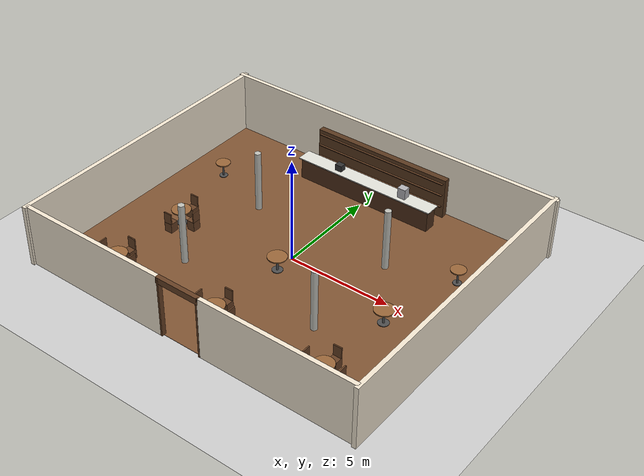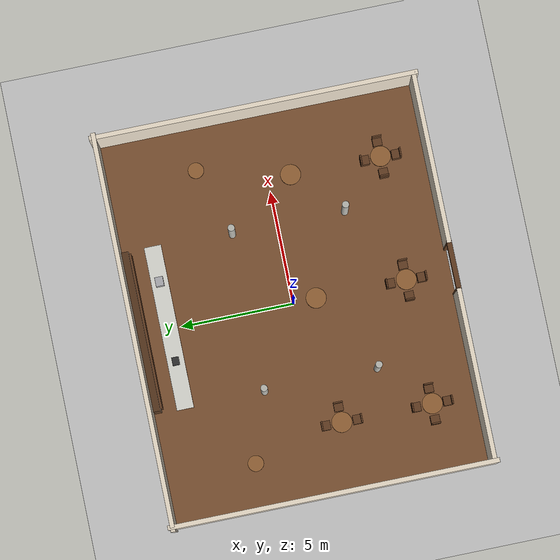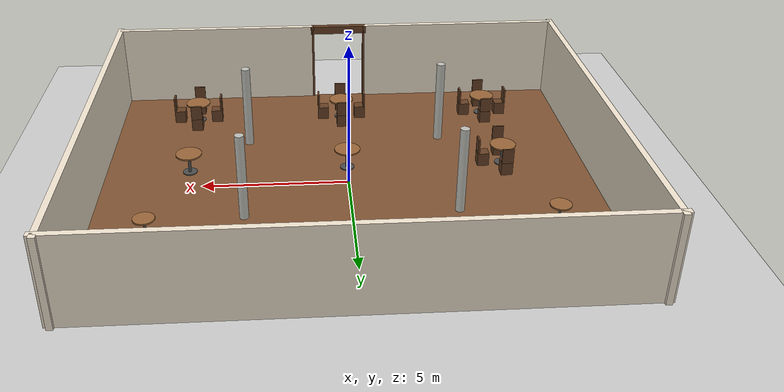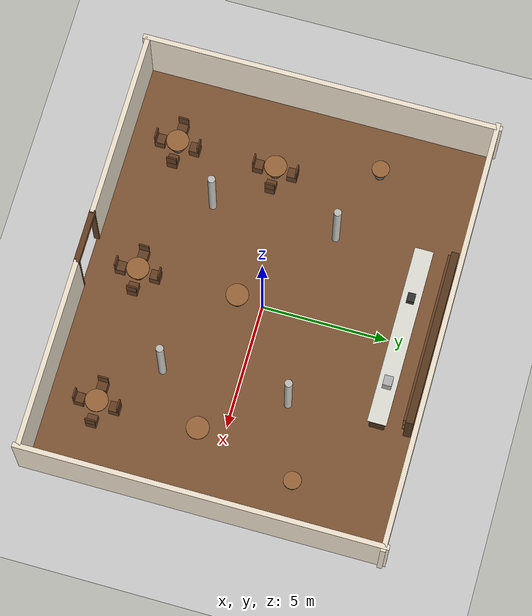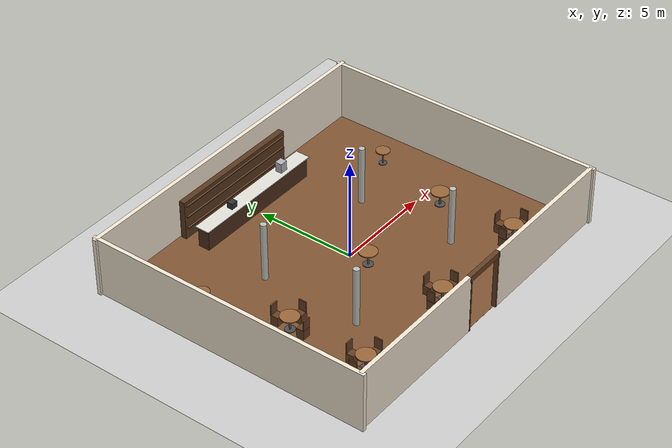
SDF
<sdf version="1.6">
 <world name="cafe_world">
  <include><uri>model://sun</uri></include>
  <include><uri>model://ground_plane</uri></include>
  <model name="cafe_floor">
   <static>true</static>
   <link name="link">
    <pose>0 0 0.005 0 0 0</pose>
    <collision name="c"><geometry><box><size>17 14 0.01</size></box></geometry></collision>
    <visual name="v">
     <geometry><box><size>17 14 0.01</size></box></geometry>
     <material><ambient>0.45 0.3 0.18 1</ambient><diffuse>0.5 0.33 0.2 1</diffuse></material>
    </visual>
   </link>
  </model>
  <model name="wall_north">
   <static>true</static>
   <link name="link">
    <pose>0 7 1.5 0 0 0</pose>
    <collision name="c"><geometry><box><size>17.4 0.2 3</size></box></geometry></collision>
    <visual name="v">
     <geometry><box><size>17.4 0.2 3</size></box></geometry>
     <material><ambient>0.92 0.87 0.78 1</ambient><diffuse>0.95 0.9 0.82 1</diffuse></material>
    </visual>
   </link>
  </model>
  <model name="wall_south_left">
   <static>true</static>
   <link name="link">
    <pose>-4.75 -7 1.5 0 0 0</pose>
    <collision name="c"><geometry><box><size>7.5 0.2 3</size></box></geometry></collision>
    <visual name="v">
     <geometry><box><size>7.5 0.2 3</size></box></geometry>
     <material><ambient>0.92 0.87 0.78 1</ambient><diffuse>0.95 0.9 0.82 1</diffuse></material>
    </visual>
   </link>
  </model>
  <model name="wall_south_right">
   <static>true</static>
   <link name="link">
    <pose>4.75 -7 1.5 0 0 0</pose>
    <collision name="c"><geometry><box><size>7.5 0.2 3</size></box></geometry></collision>
    <visual name="v">
     <geometry><box><size>7.5 0.2 3</size></box></geometry>
     <material><ambient>0.92 0.87 0.78 1</ambient><diffuse>0.95 0.9 0.82 1</diffuse></material>
    </visual>
   </link>
  </model>
  <model name="wall_east">
   <static>true</static>
   <link name="link">
    <pose>8.5 0 1.5 0 0 0</pose>
    <collision name="c"><geometry><box><size>0.2 14.4 3</size></box></geometry></collision>
    <visual name="v">
     <geometry><box><size>0.2 14.4 3</size></box></geometry>
     <material><ambient>0.92 0.87 0.78 1</ambient><diffuse>0.95 0.9 0.82 1</diffuse></material>
    </visual>
   </link>
  </model>
  <model name="wall_west">
   <static>true</static>
   <link name="link">
    <pose>-8.5 0 1.5 0 0 0</pose>
    <collision name="c"><geometry><box><size>0.2 14.4 3</size></box></geometry></collision>
    <visual name="v">
     <geometry><box><size>0.2 14.4 3</size></box></geometry>
     <material><ambient>0.92 0.87 0.78 1</ambient><diffuse>0.95 0.9 0.82 1</diffuse></material>
    </visual>
   </link>
  </model>
  <model name="door_frame_left">
   <static>true</static>
   <link name="link">
    <pose>-1 -7 1.5 0 0 0</pose>
    <collision name="c"><geometry><box><size>0.08 0.22 3</size></box></geometry></collision>
    <visual name="v">
     <geometry><box><size>0.08 0.22 3</size></box></geometry>
     <material><ambient>0.35 0.22 0.12 1</ambient><diffuse>0.4 0.25 0.14 1</diffuse></material>
    </visual>
   </link>
  </model>
  <model name="door_frame_right">
   <static>true</static>
   <link name="link">
    <pose>1 -7 1.5 0 0 0</pose>
    <collision name="c"><geometry><box><size>0.08 0.22 3</size></box></geometry></collision>
    <visual name="v">
     <geometry><box><size>0.08 0.22 3</size></box></geometry>
     <material><ambient>0.35 0.22 0.12 1</ambient><diffuse>0.4 0.25 0.14 1</diffuse></material>
    </visual>
   </link>
  </model>
  <model name="door_lintel">
   <static>true</static>
   <link name="link">
    <pose>0 -7 2.85 0 0 0</pose>
    <collision name="c"><geometry><box><size>2.16 0.22 0.3</size></box></geometry></collision>
    <visual name="v">
     <geometry><box><size>2.16 0.22 0.3</size></box></geometry>
     <material><ambient>0.35 0.22 0.12 1</ambient><diffuse>0.4 0.25 0.14 1</diffuse></material>
    </visual>
   </link>
  </model>
  <model name="counter">
   <static>true</static>
   <link name="link">
    <pose>0 5.5 0 0 0 0</pose>
    <collision name="body">
     <pose>0 0 0.525 0 0 0</pose>
     <geometry><box><size>7.0 0.6 1.05</size></box></geometry>
    </collision>
    <visual name="body_v">
     <pose>0 0 0.525 0 0 0</pose>
     <geometry><box><size>7.0 0.6 1.05</size></box></geometry>
     <material><ambient>0.25 0.15 0.08 1</ambient><diffuse>0.3 0.18 0.1 1</diffuse></material>
    </visual>
    <collision name="top">
     <pose>0 0 1.075 0 0 0</pose>
     <geometry><box><size>7.2 0.75 0.05</size></box></geometry>
    </collision>
    <visual name="top_v">
     <pose>0 0 1.075 0 0 0</pose>
     <geometry><box><size>7.2 0.75 0.05</size></box></geometry>
     <material><ambient>0.82 0.82 0.8 1</ambient><diffuse>0.88 0.88 0.85 1</diffuse></material>
    </visual>
   </link>
  </model>
  <model name="back_shelf">
   <static>true</static>
   <link name="link">
    <pose>0 6.7 0 0 0 0</pose>
    <collision name="c">
     <pose>0 0 1.0 0 0 0</pose>
     <geometry><box><size>7.0 0.3 2.0</size></box></geometry>
    </collision>
    <visual name="v">
     <pose>0 0 1.0 0 0 0</pose>
     <geometry><box><size>7.0 0.3 2.0</size></box></geometry>
     <material><ambient>0.3 0.18 0.1 1</ambient><diffuse>0.35 0.22 0.12 1</diffuse></material>
    </visual>
    <collision name="shelf1">
     <pose>0 -0.05 0.6 0 0 0</pose>
     <geometry><box><size>6.8 0.4 0.03</size></box></geometry>
    </collision>
    <visual name="shelf1_v">
     <pose>0 -0.05 0.6 0 0 0</pose>
     <geometry><box><size>6.8 0.4 0.03</size></box></geometry>
     <material><ambient>0.4 0.25 0.14 1</ambient></material>
    </visual>
    <collision name="shelf2">
     <pose>0 -0.05 1.2 0 0 0</pose>
     <geometry><box><size>6.8 0.4 0.03</size></box></geometry>
    </collision>
    <visual name="shelf2_v">
     <pose>0 -0.05 1.2 0 0 0</pose>
     <geometry><box><size>6.8 0.4 0.03</size></box></geometry>
     <material><ambient>0.4 0.25 0.14 1</ambient></material>
    </visual>
    <collision name="shelf3">
     <pose>0 -0.05 1.8 0 0 0</pose>
     <geometry><box><size>6.8 0.4 0.03</size></box></geometry>
    </collision>
    <visual name="shelf3_v">
     <pose>0 -0.05 1.8 0 0 0</pose>
     <geometry><box><size>6.8 0.4 0.03</size></box></geometry>
     <material><ambient>0.4 0.25 0.14 1</ambient></material>
    </visual>
   </link>
  </model>
  <model name="espresso_machine">
   <static>true</static>
   <link name="link">
    <pose>2 5.5 1.35 0 0 0</pose>
    <collision name="c"><geometry><box><size>0.4 0.35 0.5</size></box></geometry></collision>
    <visual name="v">
     <geometry><box><size>0.4 0.35 0.5</size></box></geometry>
     <material><ambient>0.6 0.6 0.62 1</ambient><diffuse>0.7 0.7 0.72 1</diffuse></material>
    </visual>
   </link>
  </model>
  <model name="cash_register">
   <static>true</static>
   <link name="link">
    <pose>-1.5 5.5 1.25 0 0 0</pose>
    <collision name="c"><geometry><box><size>0.35 0.3 0.3</size></box></geometry></collision>
    <visual name="v">
     <geometry><box><size>0.35 0.3 0.3</size></box></geometry>
     <material><ambient>0.15 0.15 0.15 1</ambient><diffuse>0.2 0.2 0.2 1</diffuse></material>
    </visual>
   </link>
  </model>
  <model name="column_0">
   <static>true</static>
   <link name="link">
    <pose>-3.5 -3 1.5 0 0 0</pose>
    <collision name="c">
     <geometry><cylinder><radius>0.15</radius><length>3</length></cylinder></geometry>
    </collision>
    <visual name="v">
     <geometry><cylinder><radius>0.15</radius><length>3</length></cylinder></geometry>
     <material><ambient>0.7 0.7 0.68 1</ambient><diffuse>0.75 0.75 0.72 1</diffuse></material>
    </visual>
   </link>
  </model>
  <model name="column_1">
   <static>true</static>
   <link name="link">
    <pose>3.5 -3 1.5 0 0 0</pose>
    <collision name="c">
     <geometry><cylinder><radius>0.15</radius><length>3</length></cylinder></geometry>
    </collision>
    <visual name="v">
     <geometry><cylinder><radius>0.15</radius><length>3</length></cylinder></geometry>
     <material><ambient>0.7 0.7 0.68 1</ambient><diffuse>0.75 0.75 0.72 1</diffuse></material>
    </visual>
   </link>
  </model>
  <model name="column_2">
   <static>true</static>
   <link name="link">
    <pose>-3.5 2 1.5 0 0 0</pose>
    <collision name="c">
     <geometry><cylinder><radius>0.15</radius><length>3</length></cylinder></geometry>
    </collision>
    <visual name="v">
     <geometry><cylinder><radius>0.15</radius><length>3</length></cylinder></geometry>
     <material><ambient>0.7 0.7 0.68 1</ambient><diffuse>0.75 0.75 0.72 1</diffuse></material>
    </visual>
   </link>
  </model>
  <model name="column_3">
   <static>true</static>
   <link name="link">
    <pose>3.5 2 1.5 0 0 0</pose>
    <collision name="c">
     <geometry><cylinder><radius>0.15</radius><length>3</length></cylinder></geometry>
    </collision>
    <visual name="v">
     <geometry><cylinder><radius>0.15</radius><length>3</length></cylinder></geometry>
     <material><ambient>0.7 0.7 0.68 1</ambient><diffuse>0.75 0.75 0.72 1</diffuse></material>
    </visual>
   </link>
  </model>
  <model name="table_0">
   <static>true</static>
   <link name="link">
    <pose>-5.5 -5.0 0 0 0 0</pose>
    <collision name="top">
     <pose>0 0 0.73 0 0 0</pose>
     <geometry><cylinder><radius>0.45</radius><length>0.05</length></cylinder></geometry>
    </collision>
    <visual name="top_v">
     <pose>0 0 0.73 0 0 0</pose>
     <geometry><cylinder><radius>0.45</radius><length>0.05</length></cylinder></geometry>
     <material><ambient>0.55 0.36 0.2 1</ambient><diffuse>0.6 0.4 0.22 1</diffuse></material>
    </visual>
    <collision name="leg">
     <pose>0 0 0.35 0 0 0</pose>
     <geometry><cylinder><radius>0.05</radius><length>0.7</length></cylinder></geometry>
    </collision>
    <visual name="leg_v">
     <pose>0 0 0.35 0 0 0</pose>
     <geometry><cylinder><radius>0.05</radius><length>0.7</length></cylinder></geometry>
     <material><ambient>0.3 0.3 0.3 1</ambient></material>
    </visual>
    <collision name="base">
     <pose>0 0 0.02 0 0 0</pose>
     <geometry><cylinder><radius>0.25</radius><length>0.04</length></cylinder></geometry>
    </collision>
    <visual name="base_v">
     <pose>0 0 0.02 0 0 0</pose>
     <geometry><cylinder><radius>0.25</radius><length>0.04</length></cylinder></geometry>
     <material><ambient>0.3 0.3 0.3 1</ambient></material>
    </visual>
   </link>
  </model>
  <model name="table_1">
   <static>true</static>
   <link name="link">
    <pose>0 -5.0 0 0 0 0</pose>
    <collision name="top">
     <pose>0 0 0.73 0 0 0</pose>
     <geometry><cylinder><radius>0.45</radius><length>0.05</length></cylinder></geometry>
    </collision>
    <visual name="top_v">
     <pose>0 0 0.73 0 0 0</pose>
     <geometry><cylinder><radius>0.45</radius><length>0.05</length></cylinder></geometry>
     <material><ambient>0.55 0.36 0.2 1</ambient><diffuse>0.6 0.4 0.22 1</diffuse></material>
    </visual>
    <collision name="leg">
     <pose>0 0 0.35 0 0 0</pose>
     <geometry><cylinder><radius>0.05</radius><length>0.7</length></cylinder></geometry>
    </collision>
    <visual name="leg_v">
     <pose>0 0 0.35 0 0 0</pose>
     <geometry><cylinder><radius>0.05</radius><length>0.7</length></cylinder></geometry>
     <material><ambient>0.3 0.3 0.3 1</ambient></material>
    </visual>
    <collision name="base">
     <pose>0 0 0.02 0 0 0</pose>
     <geometry><cylinder><radius>0.25</radius><length>0.04</length></cylinder></geometry>
    </collision>
    <visual name="base_v">
     <pose>0 0 0.02 0 0 0</pose>
     <geometry><cylinder><radius>0.25</radius><length>0.04</length></cylinder></geometry>
     <material><ambient>0.3 0.3 0.3 1</ambient></material>
    </visual>
   </link>
  </model>
  <model name="table_2">
   <static>true</static>
   <link name="link">
    <pose>5.5 -5.0 0 0 0 0</pose>
    <collision name="top">
     <pose>0 0 0.73 0 0 0</pose>
     <geometry><cylinder><radius>0.45</radius><length>0.05</length></cylinder></geometry>
    </collision>
    <visual name="top_v">
     <pose>0 0 0.73 0 0 0</pose>
     <geometry><cylinder><radius>0.45</radius><length>0.05</length></cylinder></geometry>
     <material><ambient>0.55 0.36 0.2 1</ambient><diffuse>0.6 0.4 0.22 1</diffuse></material>
    </visual>
    <collision name="leg">
     <pose>0 0 0.35 0 0 0</pose>
     <geometry><cylinder><radius>0.05</radius><length>0.7</length></cylinder></geometry>
    </collision>
    <visual name="leg_v">
     <pose>0 0 0.35 0 0 0</pose>
     <geometry><cylinder><radius>0.05</radius><length>0.7</length></cylinder></geometry>
     <material><ambient>0.3 0.3 0.3 1</ambient></material>
    </visual>
    <collision name="base">
     <pose>0 0 0.02 0 0 0</pose>
     <geometry><cylinder><radius>0.25</radius><length>0.04</length></cylinder></geometry>
    </collision>
    <visual name="base_v">
     <pose>0 0 0.02 0 0 0</pose>
     <geometry><cylinder><radius>0.25</radius><length>0.04</length></cylinder></geometry>
     <material><ambient>0.3 0.3 0.3 1</ambient></material>
    </visual>
   </link>
  </model>
  <model name="table_3">
   <static>true</static>
   <link name="link">
    <pose>-5.5 -1.0 0 0 0 0</pose>
    <collision name="top">
     <pose>0 0 0.73 0 0 0</pose>
     <geometry><cylinder><radius>0.45</radius><length>0.05</length></cylinder></geometry>
    </collision>
    <visual name="top_v">
     <pose>0 0 0.73 0 0 0</pose>
     <geometry><cylinder><radius>0.45</radius><length>0.05</length></cylinder></geometry>
     <material><ambient>0.55 0.36 0.2 1</ambient><diffuse>0.6 0.4 0.22 1</diffuse></material>
    </visual>
    <collision name="leg">
     <pose>0 0 0.35 0 0 0</pose>
     <geometry><cylinder><radius>0.05</radius><length>0.7</length></cylinder></geometry>
    </collision>
    <visual name="leg_v">
     <pose>0 0 0.35 0 0 0</pose>
     <geometry><cylinder><radius>0.05</radius><length>0.7</length></cylinder></geometry>
     <material><ambient>0.3 0.3 0.3 1</ambient></material>
    </visual>
    <collision name="base">
     <pose>0 0 0.02 0 0 0</pose>
     <geometry><cylinder><radius>0.25</radius><length>0.04</length></cylinder></geometry>
    </collision>
    <visual name="base_v">
     <pose>0 0 0.02 0 0 0</pose>
     <geometry><cylinder><radius>0.25</radius><length>0.04</length></cylinder></geometry>
     <material><ambient>0.3 0.3 0.3 1</ambient></material>
    </visual>
   </link>
  </model>
  <model name="table_4">
   <static>true</static>
   <link name="link">
    <pose>0 -1.0 0 0 0 0</pose>
    <collision name="top">
     <pose>0 0 0.73 0 0 0</pose>
     <geometry><cylinder><radius>0.45</radius><length>0.05</length></cylinder></geometry>
    </collision>
    <visual name="top_v">
     <pose>0 0 0.73 0 0 0</pose>
     <geometry><cylinder><radius>0.45</radius><length>0.05</length></cylinder></geometry>
     <material><ambient>0.55 0.36 0.2 1</ambient><diffuse>0.6 0.4 0.22 1</diffuse></material>
    </visual>
    <collision name="leg">
     <pose>0 0 0.35 0 0 0</pose>
     <geometry><cylinder><radius>0.05</radius><length>0.7</length></cylinder></geometry>
    </collision>
    <visual name="leg_v">
     <pose>0 0 0.35 0 0 0</pose>
     <geometry><cylinder><radius>0.05</radius><length>0.7</length></cylinder></geometry>
     <material><ambient>0.3 0.3 0.3 1</ambient></material>
    </visual>
    <collision name="base">
     <pose>0 0 0.02 0 0 0</pose>
     <geometry><cylinder><radius>0.25</radius><length>0.04</length></cylinder></geometry>
    </collision>
    <visual name="base_v">
     <pose>0 0 0.02 0 0 0</pose>
     <geometry><cylinder><radius>0.25</radius><length>0.04</length></cylinder></geometry>
     <material><ambient>0.3 0.3 0.3 1</ambient></material>
    </visual>
   </link>
  </model>
  <model name="table_5">
   <static>true</static>
   <link name="link">
    <pose>5.5 -1.0 0 0 0 0</pose>
    <collision name="top">
     <pose>0 0 0.73 0 0 0</pose>
     <geometry><cylinder><radius>0.45</radius><length>0.05</length></cylinder></geometry>
    </collision>
    <visual name="top_v">
     <pose>0 0 0.73 0 0 0</pose>
     <geometry><cylinder><radius>0.45</radius><length>0.05</length></cylinder></geometry>
     <material><ambient>0.55 0.36 0.2 1</ambient><diffuse>0.6 0.4 0.22 1</diffuse></material>
    </visual>
    <collision name="leg">
     <pose>0 0 0.35 0 0 0</pose>
     <geometry><cylinder><radius>0.05</radius><length>0.7</length></cylinder></geometry>
    </collision>
    <visual name="leg_v">
     <pose>0 0 0.35 0 0 0</pose>
     <geometry><cylinder><radius>0.05</radius><length>0.7</length></cylinder></geometry>
     <material><ambient>0.3 0.3 0.3 1</ambient></material>
    </visual>
    <collision name="base">
     <pose>0 0 0.02 0 0 0</pose>
     <geometry><cylinder><radius>0.25</radius><length>0.04</length></cylinder></geometry>
    </collision>
    <visual name="base_v">
     <pose>0 0 0.02 0 0 0</pose>
     <geometry><cylinder><radius>0.25</radius><length>0.04</length></cylinder></geometry>
     <material><ambient>0.3 0.3 0.3 1</ambient></material>
    </visual>
   </link>
  </model>
  <model name="table_6">
   <static>true</static>
   <link name="link">
    <pose>-6.5 3.0 0 0 0 0</pose>
    <collision name="top">
     <pose>0 0 0.73 0 0 0</pose>
     <geometry><cylinder><radius>0.35</radius><length>0.05</length></cylinder></geometry>
    </collision>
    <visual name="top_v">
     <pose>0 0 0.73 0 0 0</pose>
     <geometry><cylinder><radius>0.35</radius><length>0.05</length></cylinder></geometry>
     <material><ambient>0.55 0.36 0.2 1</ambient><diffuse>0.6 0.4 0.22 1</diffuse></material>
    </visual>
    <collision name="leg">
     <pose>0 0 0.35 0 0 0</pose>
     <geometry><cylinder><radius>0.04</radius><length>0.7</length></cylinder></geometry>
    </collision>
    <visual name="leg_v">
     <pose>0 0 0.35 0 0 0</pose>
     <geometry><cylinder><radius>0.04</radius><length>0.7</length></cylinder></geometry>
     <material><ambient>0.3 0.3 0.3 1</ambient></material>
    </visual>
    <collision name="base">
     <pose>0 0 0.02 0 0 0</pose>
     <geometry><cylinder><radius>0.2</radius><length>0.04</length></cylinder></geometry>
    </collision>
    <visual name="base_v">
     <pose>0 0 0.02 0 0 0</pose>
     <geometry><cylinder><radius>0.2</radius><length>0.04</length></cylinder></geometry>
     <material><ambient>0.3 0.3 0.3 1</ambient></material>
    </visual>
   </link>
  </model>
  <model name="table_7">
   <static>true</static>
   <link name="link">
    <pose>6.5 3.0 0 0 0 0</pose>
    <collision name="top">
     <pose>0 0 0.73 0 0 0</pose>
     <geometry><cylinder><radius>0.35</radius><length>0.05</length></cylinder></geometry>
    </collision>
    <visual name="top_v">
     <pose>0 0 0.73 0 0 0</pose>
     <geometry><cylinder><radius>0.35</radius><length>0.05</length></cylinder></geometry>
     <material><ambient>0.55 0.36 0.2 1</ambient><diffuse>0.6 0.4 0.22 1</diffuse></material>
    </visual>
    <collision name="leg">
     <pose>0 0 0.35 0 0 0</pose>
     <geometry><cylinder><radius>0.04</radius><length>0.7</length></cylinder></geometry>
    </collision>
    <visual name="leg_v">
     <pose>0 0 0.35 0 0 0</pose>
     <geometry><cylinder><radius>0.04</radius><length>0.7</length></cylinder></geometry>
     <material><ambient>0.3 0.3 0.3 1</ambient></material>
    </visual>
    <collision name="base">
     <pose>0 0 0.02 0 0 0</pose>
     <geometry><cylinder><radius>0.2</radius><length>0.04</length></cylinder></geometry>
    </collision>
    <visual name="base_v">
     <pose>0 0 0.02 0 0 0</pose>
     <geometry><cylinder><radius>0.2</radius><length>0.04</length></cylinder></geometry>
     <material><ambient>0.3 0.3 0.3 1</ambient></material>
    </visual>
   </link>
  </model>
  <model name="chair_0_n">
   <static>true</static>
   <link name="link">
    <pose>-5.5 -4.3 0 0 0 3.1416</pose>
    <collision name="seat">
     <pose>0 0 0.24 0 0 0</pose>
     <geometry><box><size>0.4 0.4 0.48</size></box></geometry>
    </collision>
    <visual name="seat_v">
     <pose>0 0 0.24 0 0 0</pose>
     <geometry><box><size>0.4 0.4 0.48</size></box></geometry>
     <material><ambient>0.35 0.22 0.12 1</ambient><diffuse>0.4 0.25 0.14 1</diffuse></material>
    </visual>
    <collision name="back">
     <pose>0 -0.17 0.74 0 0 0</pose>
     <geometry><box><size>0.4 0.06 0.54</size></box></geometry>
    </collision>
    <visual name="back_v">
     <pose>0 -0.17 0.74 0 0 0</pose>
     <geometry><box><size>0.4 0.06 0.54</size></box></geometry>
     <material><ambient>0.35 0.22 0.12 1</ambient><diffuse>0.4 0.25 0.14 1</diffuse></material>
    </visual>
   </link>
  </model>
  <model name="chair_0_s">
   <static>true</static>
   <link name="link">
    <pose>-5.5 -5.7 0 0 0 0</pose>
    <collision name="seat">
     <pose>0 0 0.24 0 0 0</pose>
     <geometry><box><size>0.4 0.4 0.48</size></box></geometry>
    </collision>
    <visual name="seat_v">
     <pose>0 0 0.24 0 0 0</pose>
     <geometry><box><size>0.4 0.4 0.48</size></box></geometry>
     <material><ambient>0.35 0.22 0.12 1</ambient><diffuse>0.4 0.25 0.14 1</diffuse></material>
    </visual>
    <collision name="back">
     <pose>0 -0.17 0.74 0 0 0</pose>
     <geometry><box><size>0.4 0.06 0.54</size></box></geometry>
    </collision>
    <visual name="back_v">
     <pose>0 -0.17 0.74 0 0 0</pose>
     <geometry><box><size>0.4 0.06 0.54</size></box></geometry>
     <material><ambient>0.35 0.22 0.12 1</ambient><diffuse>0.4 0.25 0.14 1</diffuse></material>
    </visual>
   </link>
  </model>
  <model name="chair_0_e">
   <static>true</static>
   <link name="link">
    <pose>-4.8 -5.0 0 0 0 1.5708</pose>
    <collision name="seat">
     <pose>0 0 0.24 0 0 0</pose>
     <geometry><box><size>0.4 0.4 0.48</size></box></geometry>
    </collision>
    <visual name="seat_v">
     <pose>0 0 0.24 0 0 0</pose>
     <geometry><box><size>0.4 0.4 0.48</size></box></geometry>
     <material><ambient>0.35 0.22 0.12 1</ambient><diffuse>0.4 0.25 0.14 1</diffuse></material>
    </visual>
    <collision name="back">
     <pose>0 -0.17 0.74 0 0 0</pose>
     <geometry><box><size>0.4 0.06 0.54</size></box></geometry>
    </collision>
    <visual name="back_v">
     <pose>0 -0.17 0.74 0 0 0</pose>
     <geometry><box><size>0.4 0.06 0.54</size></box></geometry>
     <material><ambient>0.35 0.22 0.12 1</ambient><diffuse>0.4 0.25 0.14 1</diffuse></material>
    </visual>
   </link>
  </model>
  <model name="chair_0_w">
   <static>true</static>
   <link name="link">
    <pose>-6.2 -5.0 0 0 0 -1.5708</pose>
    <collision name="seat">
     <pose>0 0 0.24 0 0 0</pose>
     <geometry><box><size>0.4 0.4 0.48</size></box></geometry>
    </collision>
    <visual name="seat_v">
     <pose>0 0 0.24 0 0 0</pose>
     <geometry><box><size>0.4 0.4 0.48</size></box></geometry>
     <material><ambient>0.35 0.22 0.12 1</ambient><diffuse>0.4 0.25 0.14 1</diffuse></material>
    </visual>
    <collision name="back">
     <pose>0 -0.17 0.74 0 0 0</pose>
     <geometry><box><size>0.4 0.06 0.54</size></box></geometry>
    </collision>
    <visual name="back_v">
     <pose>0 -0.17 0.74 0 0 0</pose>
     <geometry><box><size>0.4 0.06 0.54</size></box></geometry>
     <material><ambient>0.35 0.22 0.12 1</ambient><diffuse>0.4 0.25 0.14 1</diffuse></material>
    </visual>
   </link>
  </model>
  <model name="chair_1_n">
   <static>true</static>
   <link name="link">
    <pose>0 -4.3 0 0 0 3.1416</pose>
    <collision name="seat">
     <pose>0 0 0.24 0 0 0</pose>
     <geometry><box><size>0.4 0.4 0.48</size></box></geometry>
    </collision>
    <visual name="seat_v">
     <pose>0 0 0.24 0 0 0</pose>
     <geometry><box><size>0.4 0.4 0.48</size></box></geometry>
     <material><ambient>0.35 0.22 0.12 1</ambient><diffuse>0.4 0.25 0.14 1</diffuse></material>
    </visual>
    <collision name="back">
     <pose>0 -0.17 0.74 0 0 0</pose>
     <geometry><box><size>0.4 0.06 0.54</size></box></geometry>
    </collision>
    <visual name="back_v">
     <pose>0 -0.17 0.74 0 0 0</pose>
     <geometry><box><size>0.4 0.06 0.54</size></box></geometry>
     <material><ambient>0.35 0.22 0.12 1</ambient><diffuse>0.4 0.25 0.14 1</diffuse></material>
    </visual>
   </link>
  </model>
  <model name="chair_1_s">
   <static>true</static>
   <link name="link">
    <pose>0 -5.7 0 0 0 0</pose>
    <collision name="seat">
     <pose>0 0 0.24 0 0 0</pose>
     <geometry><box><size>0.4 0.4 0.48</size></box></geometry>
    </collision>
    <visual name="seat_v">
     <pose>0 0 0.24 0 0 0</pose>
     <geometry><box><size>0.4 0.4 0.48</size></box></geometry>
     <material><ambient>0.35 0.22 0.12 1</ambient><diffuse>0.4 0.25 0.14 1</diffuse></material>
    </visual>
    <collision name="back">
     <pose>0 -0.17 0.74 0 0 0</pose>
     <geometry><box><size>0.4 0.06 0.54</size></box></geometry>
    </collision>
    <visual name="back_v">
     <pose>0 -0.17 0.74 0 0 0</pose>
     <geometry><box><size>0.4 0.06 0.54</size></box></geometry>
     <material><ambient>0.35 0.22 0.12 1</ambient><diffuse>0.4 0.25 0.14 1</diffuse></material>
    </visual>
   </link>
  </model>
  <model name="chair_1_e">
   <static>true</static>
   <link name="link">
    <pose>0.7 -5.0 0 0 0 1.5708</pose>
    <collision name="seat">
     <pose>0 0 0.24 0 0 0</pose>
     <geometry><box><size>0.4 0.4 0.48</size></box></geometry>
    </collision>
    <visual name="seat_v">
     <pose>0 0 0.24 0 0 0</pose>
     <geometry><box><size>0.4 0.4 0.48</size></box></geometry>
     <material><ambient>0.35 0.22 0.12 1</ambient><diffuse>0.4 0.25 0.14 1</diffuse></material>
    </visual>
    <collision name="back">
     <pose>0 -0.17 0.74 0 0 0</pose>
     <geometry><box><size>0.4 0.06 0.54</size></box></geometry>
    </collision>
    <visual name="back_v">
     <pose>0 -0.17 0.74 0 0 0</pose>
     <geometry><box><size>0.4 0.06 0.54</size></box></geometry>
     <material><ambient>0.35 0.22 0.12 1</ambient><diffuse>0.4 0.25 0.14 1</diffuse></material>
    </visual>
   </link>
  </model>
  <model name="chair_1_w">
   <static>true</static>
   <link name="link">
    <pose>-0.7 -5.0 0 0 0 -1.5708</pose>
    <collision name="seat">
     <pose>0 0 0.24 0 0 0</pose>
     <geometry><box><size>0.4 0.4 0.48</size></box></geometry>
    </collision>
    <visual name="seat_v">
     <pose>0 0 0.24 0 0 0</pose>
     <geometry><box><size>0.4 0.4 0.48</size></box></geometry>
     <material><ambient>0.35 0.22 0.12 1</ambient><diffuse>0.4 0.25 0.14 1</diffuse></material>
    </visual>
    <collision name="back">
     <pose>0 -0.17 0.74 0 0 0</pose>
     <geometry><box><size>0.4 0.06 0.54</size></box></geometry>
    </collision>
    <visual name="back_v">
     <pose>0 -0.17 0.74 0 0 0</pose>
     <geometry><box><size>0.4 0.06 0.54</size></box></geometry>
     <material><ambient>0.35 0.22 0.12 1</ambient><diffuse>0.4 0.25 0.14 1</diffuse></material>
    </visual>
   </link>
  </model>
  <model name="chair_2_n">
   <static>true</static>
   <link name="link">
    <pose>5.5 -4.3 0 0 0 3.1416</pose>
    <collision name="seat">
     <pose>0 0 0.24 0 0 0</pose>
     <geometry><box><size>0.4 0.4 0.48</size></box></geometry>
    </collision>
    <visual name="seat_v">
     <pose>0 0 0.24 0 0 0</pose>
     <geometry><box><size>0.4 0.4 0.48</size></box></geometry>
     <material><ambient>0.35 0.22 0.12 1</ambient><diffuse>0.4 0.25 0.14 1</diffuse></material>
    </visual>
    <collision name="back">
     <pose>0 -0.17 0.74 0 0 0</pose>
     <geometry><box><size>0.4 0.06 0.54</size></box></geometry>
    </collision>
    <visual name="back_v">
     <pose>0 -0.17 0.74 0 0 0</pose>
     <geometry><box><size>0.4 0.06 0.54</size></box></geometry>
     <material><ambient>0.35 0.22 0.12 1</ambient><diffuse>0.4 0.25 0.14 1</diffuse></material>
    </visual>
   </link>
  </model>
  <model name="chair_2_s">
   <static>true</static>
   <link name="link">
    <pose>5.5 -5.7 0 0 0 0</pose>
    <collision name="seat">
     <pose>0 0 0.24 0 0 0</pose>
     <geometry><box><size>0.4 0.4 0.48</size></box></geometry>
    </collision>
    <visual name="seat_v">
     <pose>0 0 0.24 0 0 0</pose>
     <geometry><box><size>0.4 0.4 0.48</size></box></geometry>
     <material><ambient>0.35 0.22 0.12 1</ambient><diffuse>0.4 0.25 0.14 1</diffuse></material>
    </visual>
    <collision name="back">
     <pose>0 -0.17 0.74 0 0 0</pose>
     <geometry><box><size>0.4 0.06 0.54</size></box></geometry>
    </collision>
    <visual name="back_v">
     <pose>0 -0.17 0.74 0 0 0</pose>
     <geometry><box><size>0.4 0.06 0.54</size></box></geometry>
     <material><ambient>0.35 0.22 0.12 1</ambient><diffuse>0.4 0.25 0.14 1</diffuse></material>
    </visual>
   </link>
  </model>
  <model name="chair_2_e">
   <static>true</static>
   <link name="link">
    <pose>6.2 -5.0 0 0 0 1.5708</pose>
    <collision name="seat">
     <pose>0 0 0.24 0 0 0</pose>
     <geometry><box><size>0.4 0.4 0.48</size></box></geometry>
    </collision>
    <visual name="seat_v">
     <pose>0 0 0.24 0 0 0</pose>
     <geometry><box><size>0.4 0.4 0.48</size></box></geometry>
     <material><ambient>0.35 0.22 0.12 1</ambient><diffuse>0.4 0.25 0.14 1</diffuse></material>
    </visual>
    <collision name="back">
     <pose>0 -0.17 0.74 0 0 0</pose>
     <geometry><box><size>0.4 0.06 0.54</size></box></geometry>
    </collision>
    <visual name="back_v">
     <pose>0 -0.17 0.74 0 0 0</pose>
     <geometry><box><size>0.4 0.06 0.54</size></box></geometry>
     <material><ambient>0.35 0.22 0.12 1</ambient><diffuse>0.4 0.25 0.14 1</diffuse></material>
    </visual>
   </link>
  </model>
  <model name="chair_2_w">
   <static>true</static>
   <link name="link">
    <pose>4.8 -5.0 0 0 0 -1.5708</pose>
    <collision name="seat">
     <pose>0 0 0.24 0 0 0</pose>
     <geometry><box><size>0.4 0.4 0.48</size></box></geometry>
    </collision>
    <visual name="seat_v">
     <pose>0 0 0.24 0 0 0</pose>
     <geometry><box><size>0.4 0.4 0.48</size></box></geometry>
     <material><ambient>0.35 0.22 0.12 1</ambient><diffuse>0.4 0.25 0.14 1</diffuse></material>
    </visual>
    <collision name="back">
     <pose>0 -0.17 0.74 0 0 0</pose>
     <geometry><box><size>0.4 0.06 0.54</size></box></geometry>
    </collision>
    <visual name="back_v">
     <pose>0 -0.17 0.74 0 0 0</pose>
     <geometry><box><size>0.4 0.06 0.54</size></box></geometry>
     <material><ambient>0.35 0.22 0.12 1</ambient><diffuse>0.4 0.25 0.14 1</diffuse></material>
    </visual>
   </link>
  </model>
  <model name="chair_3_n">
   <static>true</static>
   <link name="link">
    <pose>-5.5 -0.3 0 0 0 3.1416</pose>
    <collision name="seat">
     <pose>0 0 0.24 0 0 0</pose>
     <geometry><box><size>0.4 0.4 0.48</size></box></geometry>
    </collision>
    <visual name="seat_v">
     <pose>0 0 0.24 0 0 0</pose>
     <geometry><box><size>0.4 0.4 0.48</size></box></geometry>
     <material><ambient>0.35 0.22 0.12 1</ambient><diffuse>0.4 0.25 0.14 1</diffuse></material>
    </visual>
    <collision name="back">
     <pose>0 -0.17 0.74 0 0 0</pose>
     <geometry><box><size>0.4 0.06 0.54</size></box></geometry>
    </collision>
    <visual name="back_v">
     <pose>0 -0.17 0.74 0 0 0</pose>
     <geometry><box><size>0.4 0.06 0.54</size></box></geometry>
     <material><ambient>0.35 0.22 0.12 1</ambient><diffuse>0.4 0.25 0.14 1</diffuse></material>
    </visual>
   </link>
  </model>
  <model name="chair_3_s">
   <static>true</static>
   <link name="link">
    <pose>-5.5 -1.7 0 0 0 0</pose>
    <collision name="seat">
     <pose>0 0 0.24 0 0 0</pose>
     <geometry><box><size>0.4 0.4 0.48</size></box></geometry>
    </collision>
    <visual name="seat_v">
     <pose>0 0 0.24 0 0 0</pose>
     <geometry><box><size>0.4 0.4 0.48</size></box></geometry>
     <material><ambient>0.35 0.22 0.12 1</ambient><diffuse>0.4 0.25 0.14 1</diffuse></material>
    </visual>
    <collision name="back">
     <pose>0 -0.17 0.74 0 0 0</pose>
     <geometry><box><size>0.4 0.06 0.54</size></box></geometry>
    </collision>
    <visual name="back_v">
     <pose>0 -0.17 0.74 0 0 0</pose>
     <geometry><box><size>0.4 0.06 0.54</size></box></geometry>
     <material><ambient>0.35 0.22 0.12 1</ambient><diffuse>0.4 0.25 0.14 1</diffuse></material>
    </visual>
   </link>
  </model>
  <model name="chair_3_e">
   <static>true</static>
   <link name="link">
    <pose>-4.8 -1.0 0 0 0 1.5708</pose>
    <collision name="seat">
     <pose>0 0 0.24 0 0 0</pose>
     <geometry><box><size>0.4 0.4 0.48</size></box></geometry>
    </collision>
    <visual name="seat_v">
     <pose>0 0 0.24 0 0 0</pose>
     <geometry><box><size>0.4 0.4 0.48</size></box></geometry>
     <material><ambient>0.35 0.22 0.12 1</ambient><diffuse>0.4 0.25 0.14 1</diffuse></material>
    </visual>
    <collision name="back">
     <pose>0 -0.17 0.74 0 0 0</pose>
     <geometry><box><size>0.4 0.06 0.54</size></box></geometry>
    </collision>
    <visual name="back_v">
     <pose>0 -0.17 0.74 0 0 0</pose>
     <geometry><box><size>0.4 0.06 0.54</size></box></geometry>
     <material><ambient>0.35 0.22 0.12 1</ambient><diffuse>0.4 0.25 0.14 1</diffuse></material>
    </visual>
   </link>
  </model>
 </world>
</sdf>
